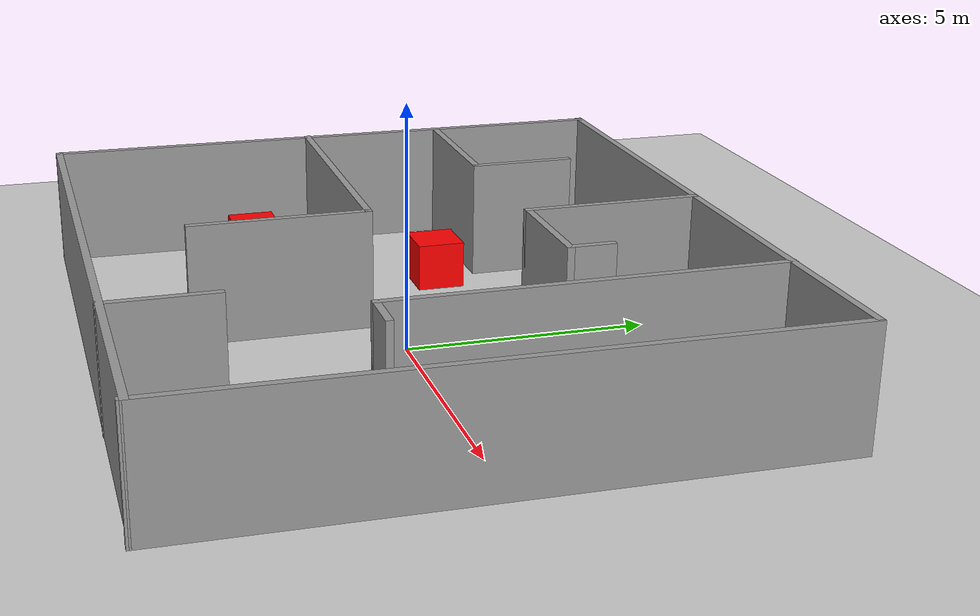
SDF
<sdf version="1.7">
 <world name="default">
  <light name="sun" type="directional">
   <pose>0 0 10 0 -0 0</pose>
   <diffuse>0.8 0.8 0.8 1</diffuse>
   <specular>0.2 0.2 0.2 1</specular>
   <attenuation>
    <range>1000</range>
    <constant>0.9</constant>
    <linear>0.01</linear>
    <quadratic>0.001</quadratic>
   </attenuation>
   <direction>-0.5 0.1 -0.9</direction>
   <spot><inner_angle>0</inner_angle><outer_angle>0</outer_angle><falloff>0</falloff></spot>
  </light>
  <model name="ground_plane">
   <static>1</static>
   <link name="link">
    <collision name="collision">
     <geometry><plane><normal>0 0 1</normal><size>100 100</size></plane></geometry>
     <surface><friction><ode><mu>100</mu><mu2>50</mu2></ode></friction></surface>
    </collision>
    <visual name="visual">
     <cast_shadows>0</cast_shadows>
     <geometry><plane><normal>0 0 1</normal><size>100 100</size></plane></geometry>
     <material>
      <script><uri>file://media/materials/scripts/gazebo.material</uri><name>Gazebo/Grey</name></script>
     </material>
    </visual>
   </link>
  </model>
  <gravity>0 0 -9.8</gravity>
  <magnetic_field>6e-06 2.3e-05 -4.2e-05</magnetic_field>
  <atmosphere type="adiabatic"/>
  <physics type="ode">
   <max_step_size>0.001</max_step_size>
   <real_time_factor>1</real_time_factor>
   <real_time_update_rate>1000</real_time_update_rate>
  </physics>
  <scene><ambient>0.4 0.4 0.4 1</ambient><background>0.7 0.7 0.7 1</background><shadows>1</shadows></scene>
  <audio><device>default</device></audio>
  <spherical_coordinates>
   <surface_model>EARTH_WGS84</surface_model>
   <latitude_deg>0</latitude_deg>
   <longitude_deg>0</longitude_deg>
   <elevation>0</elevation>
   <heading_deg>0</heading_deg>
  </spherical_coordinates>
  <model name="A1_WORLD">
   <pose>-0.371794 0.117875 0 0 -0 0</pose>
   <link name="Wall_11">
    <collision name="Wall_11_Collision">
     <geometry><box><size>13.8197 0.15 2.5</size></box></geometry>
     <pose>0 0 1.25 0 -0 0</pose>
    </collision>
    <visual name="Wall_11_Visual">
     <pose>0 0 1.25 0 -0 0</pose>
     <geometry><box><size>13.8197 0.15 2.5</size></box></geometry>
     <material>
      <script><uri>file://media/materials/scripts/gazebo.material</uri><name>Gazebo/Grey</name></script>
      <ambient>1 1 1 1</ambient>
     </material>
     <meta><layer>0</layer></meta>
    </visual>
    <pose>-0.046384 -6.19867 0 0 -0 0.00296</pose>
   </link>
   <link name="Wall_13">
    <collision name="Wall_13_Collision">
     <geometry><box><size>3.25 0.15 2.5</size></box></geometry>
     <pose>0 0 1.25 0 -0 0</pose>
    </collision>
    <visual name="Wall_13_Visual">
     <pose>0 0 1.25 0 -0 0</pose>
     <geometry><box><size>3.25 0.15 2.5</size></box></geometry>
     <material>
      <script><uri>file://media/materials/scripts/gazebo.material</uri><name>Gazebo/Grey</name></script>
      <ambient>1 1 1 1</ambient>
     </material>
     <meta><layer>0</layer></meta>
    </visual>
    <pose>-5.11064 2.54435 0 0 -0 3.14159</pose>
   </link>
   <link name="Wall_15">
    <collision name="Wall_15_Collision">
     <geometry><box><size>2.25 0.15 2.5</size></box></geometry>
     <pose>0 0 1.25 0 -0 0</pose>
    </collision>
    <visual name="Wall_15_Visual">
     <pose>0 0 1.25 0 -0 0</pose>
     <geometry><box><size>2.25 0.15 2.5</size></box></geometry>
     <material>
      <script><uri>file://media/materials/scripts/gazebo.material</uri><name>Gazebo/Grey</name></script>
      <ambient>1 1 1 1</ambient>
     </material>
     <meta><layer>0</layer></meta>
    </visual>
    <pose>-3.56064 3.59435 0 0 -0 1.5708</pose>
   </link>
   <link name="Wall_17">
    <collision name="Wall_17_Collision">
     <geometry><box><size>6 0.15 2.5</size></box></geometry>
     <pose>0 0 1.25 0 -0 0</pose>
    </collision>
    <visual name="Wall_17_Visual">
     <pose>0 0 1.25 0 -0 0</pose>
     <geometry><box><size>6 0.15 2.5</size></box></geometry>
     <material>
      <script><uri>file://media/materials/scripts/gazebo.material</uri><name>Gazebo/Grey</name></script>
      <ambient>1 1 1 1</ambient>
     </material>
     <meta><layer>0</layer></meta>
    </visual>
    <pose>-3.953 -0.530276 0 0 -0 0</pose>
   </link>
   <link name="Wall_18">
    <collision name="Wall_18_Collision">
     <geometry><box><size>3.75 0.15 2.5</size></box></geometry>
     <pose>0 0 1.25 0 -0 0</pose>
    </collision>
    <visual name="Wall_18_Visual">
     <pose>0 0 1.25 0 -0 0</pose>
     <geometry><box><size>3.75 0.15 2.5</size></box></geometry>
     <material>
      <script><uri>file://media/materials/scripts/gazebo.material</uri><name>Gazebo/Grey</name></script>
      <ambient>1 1 1 1</ambient>
     </material>
     <meta><layer>0</layer></meta>
    </visual>
    <pose>-1.028 -2.33028 0 0 -0 -1.5708</pose>
   </link>
   <link name="Wall_20">
    <collision name="Wall_20_Collision">
     <geometry><box><size>8 0.15 2.5</size></box></geometry>
     <pose>0 0 1.25 0 -0 0</pose>
    </collision>
    <visual name="Wall_20_Visual">
     <pose>0 0 1.25 0 -0 0</pose>
     <geometry><box><size>8 0.15 2.5</size></box></geometry>
     <material>
      <script><uri>file://media/materials/scripts/gazebo.material</uri><name>Gazebo/Grey</name></script>
      <ambient>1 1 1 1</ambient>
     </material>
     <meta><layer>0</layer></meta>
    </visual>
    <pose>3.92364 2.3008 0 0 -0 -1.5708</pose>
   </link>
   <link name="Wall_21">
    <collision name="Wall_21_Collision">
     <geometry><box><size>1 0.15 2.5</size></box></geometry>
     <pose>0 0 1.25 0 -0 0</pose>
    </collision>
    <visual name="Wall_21_Visual">
     <pose>0 0 1.25 0 -0 0</pose>
     <geometry><box><size>1 0.15 2.5</size></box></geometry>
     <material>
      <script><uri>file://media/materials/scripts/gazebo.material</uri><name>Gazebo/Grey</name></script>
      <ambient>1 1 1 1</ambient>
     </material>
     <meta><layer>0</layer></meta>
    </visual>
    <pose>4.34864 -1.6242 0 0 -0 0</pose>
   </link>
   <link name="Wall_23">
    <collision name="Wall_23_Collision">
     <geometry><box><size>3.75 0.15 2.5</size></box></geometry>
     <pose>0 0 1.25 0 -0 0</pose>
    </collision>
    <visual name="Wall_23_Visual">
     <pose>0 0 1.25 0 -0 0</pose>
     <geometry><box><size>3.75 0.15 2.5</size></box></geometry>
     <material>
      <script><uri>file://media/materials/scripts/gazebo.material</uri><name>Gazebo/Grey</name></script>
      <ambient>1 1 1 1</ambient>
     </material>
     <meta><layer>0</layer></meta>
    </visual>
    <pose>-0.243286 4.38535 0 0 -0 -1.5708</pose>
   </link>
   <link name="Wall_24">
    <collision name="Wall_24_Collision">
     <geometry><box><size>2.5 0.15 2.5</size></box></geometry>
     <pose>0 0 1.25 0 -0 0</pose>
    </collision>
    <visual name="Wall_24_Visual">
     <pose>0 0 1.25 0 -0 0</pose>
     <geometry><box><size>2.5 0.15 2.5</size></box></geometry>
     <material>
      <script><uri>file://media/materials/scripts/gazebo.material</uri><name>Gazebo/Grey</name></script>
      <ambient>1 1 1 1</ambient>
     </material>
     <meta><layer>0</layer></meta>
    </visual>
    <pose>0.931714 2.58535 0 0 -0 0</pose>
   </link>
   <link name="Wall_25">
    <collision name="Wall_25_Collision">
     <geometry><box><size>1 0.15 2.5</size></box></geometry>
     <pose>0 0 1.25 0 -0 0</pose>
    </collision>
    <visual name="Wall_25_Visual">
     <pose>0 0 1.25 0 -0 0</pose>
     <geometry><box><size>1 0.15 2.5</size></box></geometry>
     <material>
      <script><uri>file://media/materials/scripts/gazebo.material</uri><name>Gazebo/Grey</name></script>
      <ambient>1 1 1 1</ambient>
     </material>
     <meta><layer>0</layer></meta>
    </visual>
    <pose>2.10671 3.01035 0 0 -0 1.5708</pose>
   </link>
   <link name="Wall_27">
    <collision name="Wall_27_Collision">
     <geometry><box><size>2.25 0.15 2.5</size></box></geometry>
     <pose>0 0 1.25 0 -0 0</pose>
    </collision>
    <visual name="Wall_27_Visual">
     <pose>0 0 1.25 0 -0 0</pose>
     <geometry><box><size>2.25 0.15 2.5</size></box></geometry>
     <material>
      <script><uri>file://media/materials/scripts/gazebo.material</uri><name>Gazebo/Grey</name></script>
      <ambient>1 1 1 1</ambient>
     </material>
     <meta><layer>0</layer></meta>
    </visual>
    <pose>2.75274 -5.15493 0 0 -0 1.5708</pose>
   </link>
   <link name="Wall_4">
    <collision name="Wall_4_Collision">
     <geometry><box><size>13.8197 0.15 2.5</size></box></geometry>
     <pose>0 0 1.25 0 -0 0</pose>
    </collision>
    <visual name="Wall_4_Visual">
     <pose>0 0 1.25 0 -0 0</pose>
     <geometry><box><size>13.8197 0.15 2.5</size></box></geometry>
     <material>
      <script><uri>file://media/materials/scripts/gazebo.material</uri><name>Gazebo/Grey</name></script>
      <ambient>1 1 1 1</ambient>
     </material>
     <meta><layer>0</layer></meta>
    </visual>
    <pose>0.046664 6.204 0 0 -0 -3.13863</pose>
   </link>
   <link name="Wall_6">
    <collision name="Wall_6_Collision">
     <geometry><box><size>12.5541 0.15 2.5</size></box></geometry>
     <pose>0 0 1.25 0 -0 0</pose>
    </collision>
    <visual name="Wall_6_Visual">
     <pose>0 0 1.25 0 -0 0</pose>
     <geometry><box><size>12.5541 0.15 2.5</size></box></geometry>
     <material>
      <script><uri>file://media/materials/scripts/gazebo.material</uri><name>Gazebo/Grey</name></script>
      <ambient>1 1 1 1</ambient>
     </material>
     <meta><layer>0</layer></meta>
    </visual>
    <pose>-6.8347 -0.017567 0 0 -0 1.55579</pose>
   </link>
   <link name="Wall_8">
    <collision name="Wall_8_Collision">
     <geometry><box><size>12.6 0.15 2.5</size></box></geometry>
     <pose>0 0 1.25 0 -0 0</pose>
    </collision>
    <visual name="Wall_8_Visual">
     <pose>0 0 1.25 0 -0 0</pose>
     <geometry><box><size>12.6 0.15 2.5</size></box></geometry>
     <material>
      <script><uri>file://media/materials/scripts/gazebo.material</uri><name>Gazebo/Grey</name></script>
      <ambient>1 1 1 1</ambient>
     </material>
     <meta><layer>0</layer></meta>
    </visual>
    <pose>6.85824 -0.000373 0 0 -0 -1.58201</pose>
   </link>
   <static>1</static>
  </model>
  <model name="a1_model">
   <link name="link_0">
    <inertial>
     <mass>1</mass>
     <inertia><ixx>0.145833</ixx><ixy>0</ixy><ixz>0</ixz><iyy>0.145833</iyy><iyz>0</iyz><izz>0.125</izz></inertia>
    </inertial>
    <pose>1.95827 0.800088 0 0 -0 0</pose>
    <visual name="visual">
     <geometry><cylinder><radius>0.5</radius><length>1</length></cylinder></geometry>
     <material>
      <lighting>1</lighting>
      <script><uri>file://media/materials/scripts/gazebo.material</uri><name>Gazebo/Grey</name></script>
      <shader type="pixel"><normal_map>__default__</normal_map></shader>
      <ambient>0 1 0 0</ambient>
      <diffuse>0.7 0.7 0.7 1</diffuse>
      <specular>0.01 0.01 0.01 1</specular>
      <emissive>0 0 0 1</emissive>
     </material>
    </visual>
    <collision name="collision">
     <geometry><cylinder><radius>0.5</radius><length>1</length></cylinder></geometry>
     <surface>
      <friction>
       <ode><mu>1</mu><mu2>1</mu2><fdir1>0 0 0</fdir1><slip1>0</slip1><slip2>0</slip2></ode>
       <torsional>
        <coefficient>1</coefficient>
        <patch_radius>0</patch_radius>
        <surface_radius>0</surface_radius>
        <use_patch_radius>1</use_patch_radius>
        <ode><slip>0</slip></ode>
       </torsional>
      </friction>
      <bounce><restitution_coefficient>0</restitution_coefficient><threshold>1e+06</threshold></bounce>
      <contact>
       <collide_without_contact>0</collide_without_contact>
       <collide_without_contact_bitmask>1</collide_without_contact_bitmask>
       <collide_bitmask>1</collide_bitmask>
       <ode>
        <soft_cfm>0</soft_cfm>
        <soft_erp>0.2</soft_erp>
        <kp>1e+13</kp>
        <kd>1</kd>
        <max_vel>0.01</max_vel>
        <min_depth>0</min_depth>
       </ode>
       <bullet>
        <split_impulse>1</split_impulse>
        <split_impulse_penetration_threshold>-0.01</split_impulse_penetration_threshold>
        <soft_cfm>0</soft_cfm>
        <soft_erp>0.2</soft_erp>
        <kp>1e+13</kp>
        <kd>1</kd>
       </bullet>
      </contact>
     </surface>
    </collision>
   </link>
   <link name="link_1">
    <inertial>
     <mass>1</mass>
     <inertia>
      <ixx>0.166667</ixx>
      <ixy>0</ixy>
      <ixz>0</ixz>
      <iyy>0.166667</iyy>
      <iyz>0</iyz>
      <izz>0.166667</izz>
     </inertia>
    </inertial>
    <pose>-4.92246 -0.960552 0 0 -0 0</pose>
    <visual name="visual">
     <geometry><box><size>1 1 1</size></box></geometry>
     <material>
      <lighting>1</lighting>
      <script><uri>file://media/materials/scripts/gazebo.material</uri><name>Gazebo/Grey</name></script>
      <shader type="pixel"><normal_map>__default__</normal_map></shader>
      <ambient>1 0 0 0</ambient>
      <diffuse>0.7 0.7 0.7 1</diffuse>
      <specular>0.01 0.01 0.01 1</specular>
      <emissive>0 0 0 1</emissive>
     </material>
    </visual>
    <collision name="collision">
     <geometry><box><size>1 1 1</size></box></geometry>
     <surface>
      <friction>
       <ode><mu>1</mu><mu2>1</mu2><fdir1>0 0 0</fdir1><slip1>0</slip1><slip2>0</slip2></ode>
       <torsional>
        <coefficient>1</coefficient>
        <patch_radius>0</patch_radius>
        <surface_radius>0</surface_radius>
        <use_patch_radius>1</use_patch_radius>
        <ode><slip>0</slip></ode>
       </torsional>
      </friction>
      <bounce><restitution_coefficient>0</restitution_coefficient><threshold>1e+06</threshold></bounce>
      <contact>
       <collide_without_contact>0</collide_without_contact>
       <collide_without_contact_bitmask>1</collide_without_contact_bitmask>
       <collide_bitmask>1</collide_bitmask>
       <ode>
        <soft_cfm>0</soft_cfm>
        <soft_erp>0.2</soft_erp>
        <kp>1e+13</kp>
        <kd>1</kd>
        <max_vel>0.01</max_vel>
        <min_depth>0</min_depth>
       </ode>
       <bullet>
        <split_impulse>1</split_impulse>
        <split_impulse_penetration_threshold>-0.01</split_impulse_penetration_threshold>
        <soft_cfm>0</soft_cfm>
        <soft_erp>0.2</soft_erp>
        <kp>1e+13</kp>
        <kd>1</kd>
       </bullet>
      </contact>
     </surface>
    </collision>
   </link>
   <link name="link_2">
    <inertial>
     <mass>1</mass>
     <inertia>
      <ixx>0.166667</ixx>
      <ixy>0</ixy>
      <ixz>0</ixz>
      <iyy>0.166667</iyy>
      <iyz>0</iyz>
      <izz>0.166667</izz>
     </inertia>
    </inertial>
    <pose>-2.62236 2.65381 0 0 -0 0</pose>
    <visual name="visual">
     <geometry><box><size>1 1 1</size></box></geometry>
     <material>
      <lighting>1</lighting>
      <script><uri>file://media/materials/scripts/gazebo.material</uri><name>Gazebo/Grey</name></script>
      <shader type="pixel"><normal_map>__default__</normal_map></shader>
      <ambient>1 0 0 0</ambient>
      <diffuse>0.7 0.7 0.7 1</diffuse>
      <specular>0.01 0.01 0.01 1</specular>
      <emissive>0 0 0 1</emissive>
     </material>
    </visual>
    <collision name="collision">
     <geometry><box><size>1 1 1</size></box></geometry>
     <surface>
      <friction>
       <ode><mu>1</mu><mu2>1</mu2><fdir1>0 0 0</fdir1><slip1>0</slip1><slip2>0</slip2></ode>
       <torsional>
        <coefficient>1</coefficient>
        <patch_radius>0</patch_radius>
        <surface_radius>0</surface_radius>
        <use_patch_radius>1</use_patch_radius>
        <ode><slip>0</slip></ode>
       </torsional>
      </friction>
      <bounce><restitution_coefficient>0</restitution_coefficient><threshold>1e+06</threshold></bounce>
      <contact>
       <collide_without_contact>0</collide_without_contact>
       <collide_without_contact_bitmask>1</collide_without_contact_bitmask>
       <collide_bitmask>1</collide_bitmask>
       <ode>
        <soft_cfm>0</soft_cfm>
        <soft_erp>0.2</soft_erp>
        <kp>1e+13</kp>
        <kd>1</kd>
        <max_vel>0.01</max_vel>
        <min_depth>0</min_depth>
       </ode>
       <bullet>
        <split_impulse>1</split_impulse>
        <split_impulse_penetration_threshold>-0.01</split_impulse_penetration_threshold>
        <soft_cfm>0</soft_cfm>
        <soft_erp>0.2</soft_erp>
        <kp>1e+13</kp>
        <kd>1</kd>
       </bullet>
      </contact>
     </surface>
    </collision>
   </link>
   <link name="link_2_0">
    <inertial>
     <mass>1</mass>
     <inertia><ixx>0.1</ixx><ixy>0</ixy><ixz>0</ixz><iyy>0.1</iyy><iyz>0</iyz><izz>0.1</izz></inertia>
    </inertial>
    <pose>-5.12112 5.72151 0.5 0 -0 0</pose>
    <visual name="visual">
     <geometry><sphere><radius>0.5</radius></sphere></geometry>
     <material>
      <lighting>1</lighting>
      <script><uri>file://media/materials/scripts/gazebo.material</uri><name>Gazebo/Grey</name></script>
      <shader type="pixel"><normal_map>__default__</normal_map></shader>
      <ambient>0 0 1 0</ambient>
      <diffuse>0.7 0.7 0.7 1</diffuse>
      <specular>0.01 0.01 0.01 1</specular>
      <emissive>0 0 0 1</emissive>
     </material>
    </visual>
    <collision name="collision">
     <geometry><sphere><radius>0.5</radius></sphere></geometry>
     <surface>
      <friction>
       <ode><mu>1</mu><mu2>1</mu2><fdir1>0 0 0</fdir1><slip1>0</slip1><slip2>0</slip2></ode>
       <torsional>
        <coefficient>1</coefficient>
        <patch_radius>0</patch_radius>
        <surface_radius>0</surface_radius>
        <use_patch_radius>1</use_patch_radius>
        <ode><slip>0</slip></ode>
       </torsional>
      </friction>
      <bounce><restitution_coefficient>0</restitution_coefficient><threshold>1e+06</threshold></bounce>
      <contact>
       <collide_without_contact>0</collide_without_contact>
       <collide_without_contact_bitmask>1</collide_without_contact_bitmask>
       <collide_bitmask>1</collide_bitmask>
       <ode>
        <soft_cfm>0</soft_cfm>
        <soft_erp>0.2</soft_erp>
        <kp>1e+13</kp>
        <kd>1</kd>
        <max_vel>0.01</max_vel>
        <min_depth>0</min_depth>
       </ode>
       <bullet>
        <split_impulse>1</split_impulse>
        <split_impulse_penetration_threshold>-0.01</split_impulse_penetration_threshold>
        <soft_cfm>0</soft_cfm>
        <soft_erp>0.2</soft_erp>
        <kp>1e+13</kp>
        <kd>1</kd>
       </bullet>
      </contact>
     </surface>
    </collision>
   </link>
   <link name="link_3">
    <inertial>
     <mass>1</mass>
     <inertia>
      <ixx>0.166667</ixx>
      <ixy>0</ixy>
      <ixz>0</ixz>
      <iyy>0.166667</iyy>
      <iyz>0</iyz>
      <izz>0.166667</izz>
     </inertia>
    </inertial>
    <pose>5.58654 -2.49336 0 0 -0 0</pose>
    <visual name="visual">
     <geometry><box><size>1 1 1</size></box></geometry>
     <material>
      <lighting>1</lighting>
      <script><uri>file://media/materials/scripts/gazebo.material</uri><name>Gazebo/Grey</name></script>
      <shader type="pixel"><normal_map>__default__</normal_map></shader>
      <ambient>1 0 0 0</ambient>
      <diffuse>0.7 0.7 0.7 1</diffuse>
      <specular>0.01 0.01 0.01 1</specular>
      <emissive>0 0 0 1</emissive>
     </material>
    </visual>
    <collision name="collision">
     <geometry><box><size>1 1 1</size></box></geometry>
     <surface>
      <friction>
       <ode><mu>1</mu><mu2>1</mu2><fdir1>0 0 0</fdir1><slip1>0</slip1><slip2>0</slip2></ode>
       <torsional>
        <coefficient>1</coefficient>
        <patch_radius>0</patch_radius>
        <surface_radius>0</surface_radius>
        <use_patch_radius>1</use_patch_radius>
        <ode><slip>0</slip></ode>
       </torsional>
      </friction>
      <bounce><restitution_coefficient>0</restitution_coefficient><threshold>1e+06</threshold></bounce>
      <contact>
       <collide_without_contact>0</collide_without_contact>
       <collide_without_contact_bitmask>1</collide_without_contact_bitmask>
       <collide_bitmask>1</collide_bitmask>
       <ode>
        <soft_cfm>0</soft_cfm>
        <soft_erp>0.2</soft_erp>
        <kp>1e+13</kp>
        <kd>1</kd>
        <max_vel>0.01</max_vel>
        <min_depth>0</min_depth>
       </ode>
       <bullet>
        <split_impulse>1</split_impulse>
        <split_impulse_penetration_threshold>-0.01</split_impulse_penetration_threshold>
        <soft_cfm>0</soft_cfm>
        <soft_erp>0.2</soft_erp>
        <kp>1e+13</kp>
        <kd>1</kd>
       </bullet>
      </contact>
     </surface>
    </collision>
   </link>
   <link name="link_3_0">
    <inertial>
     <mass>1</mass>
     <inertia><ixx>0.1</ixx><ixy>0</ixy><ixz>0</ixz><iyy>0.1</iyy><iyz>0</iyz><izz>0.1</izz></inertia>
    </inertial>
    <pose>6.28747 4.80136 0.5 0 -0 0</pose>
    <visual name="visual">
     <geometry><sphere><radius>0.5</radius></sphere></geometry>
     <material>
      <lighting>1</lighting>
      <script><uri>file://media/materials/scripts/gazebo.material</uri><name>Gazebo/Grey</name></script>
      <shader type="pixel"><normal_map>__default__</normal_map></shader>
      <ambient>0 0 1 0</ambient>
      <diffuse>0.7 0.7 0.7 1</diffuse>
      <specular>0.01 0.01 0.01 1</specular>
      <emissive>0 0 0 1</emissive>
     </material>
    </visual>
    <collision name="collision">
     <geometry><sphere><radius>0.5</radius></sphere></geometry>
     <surface>
      <friction>
       <ode><mu>1</mu><mu2>1</mu2><fdir1>0 0 0</fdir1><slip1>0</slip1><slip2>0</slip2></ode>
       <torsional>
        <coefficient>1</coefficient>
        <patch_radius>0</patch_radius>
        <surface_radius>0</surface_radius>
        <use_patch_radius>1</use_patch_radius>
        <ode><slip>0</slip></ode>
       </torsional>
      </friction>
      <bounce><restitution_coefficient>0</restitution_coefficient><threshold>1e+06</threshold></bounce>
      <contact>
       <collide_without_contact>0</collide_without_contact>
       <collide_without_contact_bitmask>1</collide_without_contact_bitmask>
       <collide_bitmask>1</collide_bitmask>
       <ode>
        <soft_cfm>0</soft_cfm>
        <soft_erp>0.2</soft_erp>
        <kp>1e+13</kp>
        <kd>1</kd>
        <max_vel>0.01</max_vel>
        <min_depth>0</min_depth>
       </ode>
       <bullet>
        <split_impulse>1</split_impulse>
        <split_impulse_penetration_threshold>-0.01</split_impulse_penetration_threshold>
        <soft_cfm>0</soft_cfm>
        <soft_erp>0.2</soft_erp>
        <kp>1e+13</kp>
        <kd>1</kd>
       </bullet>
      </contact>
     </surface>
    </collision>
   </link>
   <static>0</static>
   <pose>-1.0063 -1.01098 0.512051 0 -0 0</pose>
  </model>
 </world>
</sdf>
